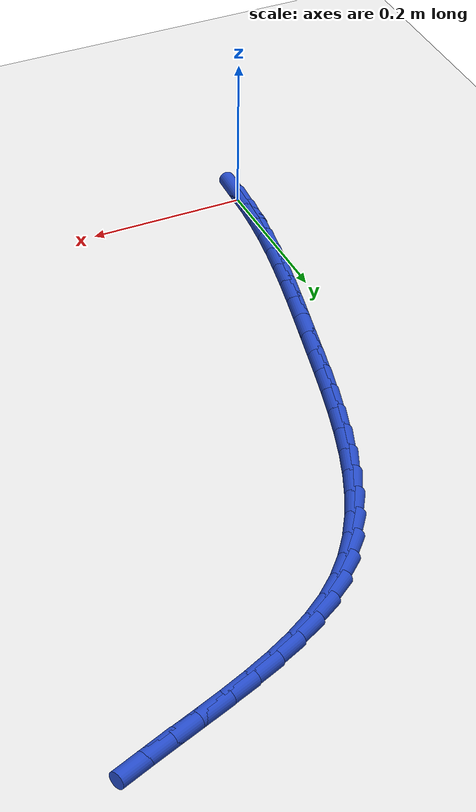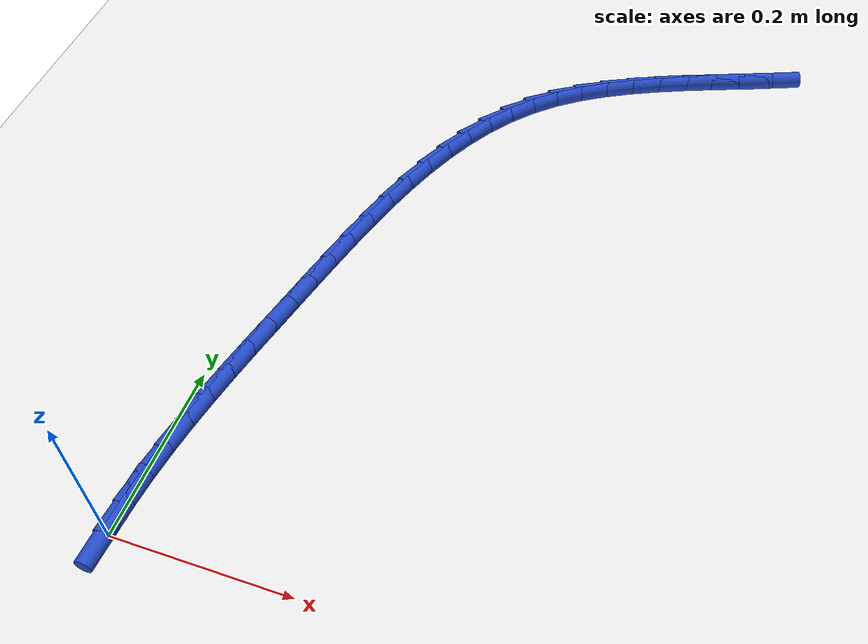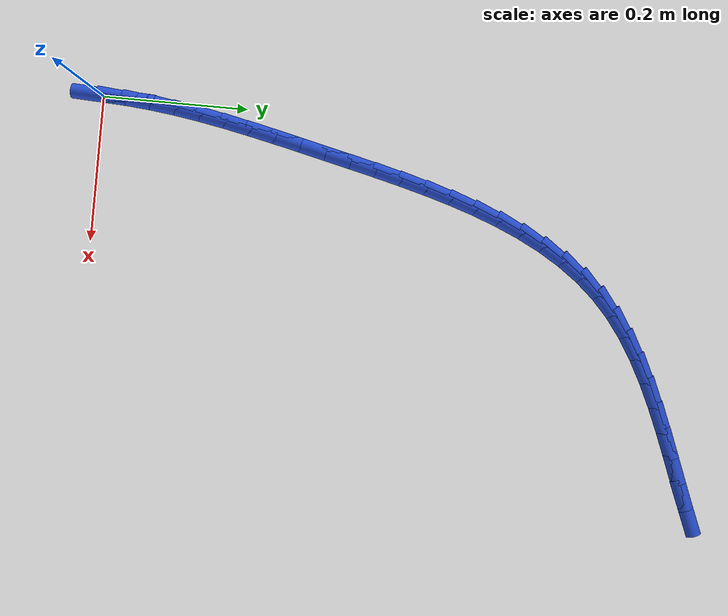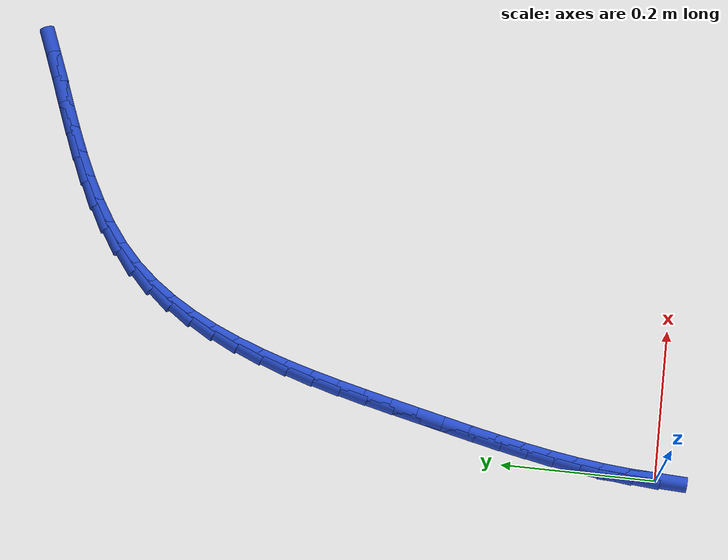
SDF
<sdf version="1.6">
 <world name="default">
  <model name="ground_plane">
   <static>1</static>
   <link name="link">
    <collision name="collision">
     <geometry><plane><normal>0 0 1</normal><size>100 100</size></plane></geometry>
     <surface><friction><ode><mu>100</mu><mu2>50</mu2></ode></friction></surface>
    </collision>
    <visual name="visual">
     <cast_shadows>0</cast_shadows>
     <geometry><plane><normal>0 0 1</normal><size>100 100</size></plane></geometry>
     <material>
      <script><uri>file://media/materials/scripts/gazebo.material</uri><name>Gazebo/WhiteGlow</name></script>
     </material>
    </visual>
   </link>
  </model>
  <model name="line">
   <link name="link_0">
    <pose>-6.938893903907228e-18 -4.163336342344337e-17 0.01 0 1.57 1.5231848816671123</pose>
    <collision name="collision">
     <geometry><cylinder><radius>0.01</radius><length>0.08</length></cylinder></geometry>
    </collision>
    <visual name="visual">
     <material>
      <script><name>Gazebo/Blue</name><uri>file://media/materials/scripts/gazebo.material</uri></script>
     </material>
     <geometry><cylinder><radius>0.01</radius><length>0.08</length></cylinder></geometry>
    </visual>
   </link>
   <link name="link_1">
    <pose>0.0016453678152193493 0.03453212469598638 0.01 0 1.57 1.483026920934233</pose>
    <collision name="collision">
     <geometry><cylinder><radius>0.01</radius><length>0.08</length></cylinder></geometry>
    </collision>
    <visual name="visual">
     <material>
      <script><name>Gazebo/Blue</name><uri>file://media/materials/scripts/gazebo.material</uri></script>
     </material>
     <geometry><cylinder><radius>0.01</radius><length>0.08</length></cylinder></geometry>
    </visual>
   </link>
   <link name="link_2">
    <pose>0.004668144235646132 0.06888362163562825 0.01 0 1.57 1.4476217210021047</pose>
    <collision name="collision">
     <geometry><cylinder><radius>0.01</radius><length>0.08</length></cylinder></geometry>
    </collision>
    <visual name="visual">
     <material>
      <script><name>Gazebo/Blue</name><uri>file://media/materials/scripts/gazebo.material</uri></script>
     </material>
     <geometry><cylinder><radius>0.01</radius><length>0.08</length></cylinder></geometry>
    </visual>
   </link>
   <link name="link_3">
    <pose>0.008908018119011703 0.10313101950087082 0.01 0 1.57 1.4172315815503256</pose>
    <collision name="collision">
     <geometry><cylinder><radius>0.01</radius><length>0.08</length></cylinder></geometry>
    </collision>
    <visual name="visual">
     <material>
      <script><name>Gazebo/Blue</name><uri>file://media/materials/scripts/gazebo.material</uri></script>
     </material>
     <geometry><cylinder><radius>0.01</radius><length>0.08</length></cylinder></geometry>
    </visual>
   </link>
   <link name="link_4">
    <pose>0.014204678323047443 0.1373508469736592 0.01 0 1.57 1.392003799599424</pose>
    <collision name="collision">
     <geometry><cylinder><radius>0.01</radius><length>0.08</length></cylinder></geometry>
    </collision>
    <visual name="visual">
     <material>
      <script><name>Gazebo/Blue</name><uri>file://media/materials/scripts/gazebo.material</uri></script>
     </material>
     <geometry><cylinder><radius>0.01</radius><length>0.08</length></cylinder></geometry>
    </visual>
   </link>
   <link name="link_5">
    <pose>0.02039781370548471 0.1716196327359385 0.01 0 1.57 1.3719909108401365</pose>
    <collision name="collision">
     <geometry><cylinder><radius>0.01</radius><length>0.08</length></cylinder></geometry>
    </collision>
    <visual name="visual">
     <material>
      <script><name>Gazebo/Blue</name><uri>file://media/materials/scripts/gazebo.material</uri></script>
     </material>
     <geometry><cylinder><radius>0.01</radius><length>0.08</length></cylinder></geometry>
    </visual>
   </link>
   <link name="link_6">
    <pose>0.027327113124054878 0.20601390546965395 0.01 0 1.57 1.3571712182811437</pose>
    <collision name="collision">
     <geometry><cylinder><radius>0.01</radius><length>0.08</length></cylinder></geometry>
    </collision>
    <visual name="visual">
     <material>
      <script><name>Gazebo/Blue</name><uri>file://media/materials/scripts/gazebo.material</uri></script>
     </material>
     <geometry><cylinder><radius>0.01</radius><length>0.08</length></cylinder></geometry>
    </visual>
   </link>
   <link name="link_7">
    <pose>0.034832265436489304 0.2406101938567506 0.01 0 1.57 1.3474670817099204</pose>
    <collision name="collision">
     <geometry><cylinder><radius>0.01</radius><length>0.08</length></cylinder></geometry>
    </collision>
    <visual name="visual">
     <material>
      <script><name>Gazebo/Blue</name><uri>file://media/materials/scripts/gazebo.material</uri></script>
     </material>
     <geometry><cylinder><radius>0.01</radius><length>0.08</length></cylinder></geometry>
    </visual>
   </link>
   <link name="link_8">
    <pose>0.0427529595005194 0.2754850265791738 0.01 0 1.57 1.3427595870435172</pose>
    <collision name="collision">
     <geometry><cylinder><radius>0.01</radius><length>0.08</length></cylinder></geometry>
    </collision>
    <visual name="visual">
     <material>
      <script><name>Gazebo/Blue</name><uri>file://media/materials/scripts/gazebo.material</uri></script>
     </material>
     <geometry><cylinder><radius>0.01</radius><length>0.08</length></cylinder></geometry>
    </visual>
   </link>
   <link name="link_9">
    <pose>0.05092888417387649 0.3107149323188686 0.01 0 1.57 1.3424490822171338</pose>
    <collision name="collision">
     <geometry><cylinder><radius>0.01</radius><length>0.08</length></cylinder></geometry>
    </collision>
    <visual name="visual">
     <material>
      <script><name>Gazebo/Blue</name><uri>file://media/materials/scripts/gazebo.material</uri></script>
     </material>
     <geometry><cylinder><radius>0.01</radius><length>0.08</length></cylinder></geometry>
    </visual>
   </link>
   <link name="link_10">
    <pose>0.05921378283738589 0.3463641352428642 0.01 0 1.57 1.3398847619424221</pose>
    <collision name="collision">
     <geometry><cylinder><radius>0.01</radius><length>0.08</length></cylinder></geometry>
    </collision>
    <visual name="visual">
     <material>
      <script><name>Gazebo/Blue</name><uri>file://media/materials/scripts/gazebo.material</uri></script>
     </material>
     <geometry><cylinder><radius>0.01</radius><length>0.08</length></cylinder></geometry>
    </visual>
   </link>
   <link name="link_11">
    <pose>0.06766654538545468 0.38231725695754404 0.01 0 1.57 1.3301765616015284</pose>
    <collision name="collision">
     <geometry><cylinder><radius>0.01</radius><length>0.08</length></cylinder></geometry>
    </collision>
    <visual name="visual">
     <material>
      <script><name>Gazebo/Blue</name><uri>file://media/materials/scripts/gazebo.material</uri></script>
     </material>
     <geometry><cylinder><radius>0.01</radius><length>0.08</length></cylinder></geometry>
    </visual>
   </link>
   <link name="link_12">
    <pose>0.07650139031269201 0.41832293131180665 0.01 0 1.57 1.3131324652733358</pose>
    <collision name="collision">
     <geometry><cylinder><radius>0.01</radius><length>0.08</length></cylinder></geometry>
    </collision>
    <visual name="visual">
     <material>
      <script><name>Gazebo/Blue</name><uri>file://media/materials/scripts/gazebo.material</uri></script>
     </material>
     <geometry><cylinder><radius>0.01</radius><length>0.08</length></cylinder></geometry>
    </visual>
   </link>
   <link name="link_13">
    <pose>0.08593638472700423 0.454126422753867 0.01 0 1.57 1.2884683190787083</pose>
    <collision name="collision">
     <geometry><cylinder><radius>0.01</radius><length>0.08</length></cylinder></geometry>
    </collision>
    <visual name="visual">
     <material>
      <script><name>Gazebo/Blue</name><uri>file://media/materials/scripts/gazebo.material</uri></script>
     </material>
     <geometry><cylinder><radius>0.01</radius><length>0.08</length></cylinder></geometry>
    </visual>
   </link>
   <link name="link_14">
    <pose>0.09618959573629778 0.48947299573193964 0.01 0 1.57 1.255699086308736</pose>
    <collision name="collision">
     <geometry><cylinder><radius>0.01</radius><length>0.08</length></cylinder></geometry>
    </collision>
    <visual name="visual">
     <material>
      <script><name>Gazebo/Blue</name><uri>file://media/materials/scripts/gazebo.material</uri></script>
     </material>
     <geometry><cylinder><radius>0.01</radius><length>0.08</length></cylinder></geometry>
    </visual>
   </link>
   <link name="link_15">
    <pose>0.10747909044847909 0.5241079146942397 0.01 0 1.57 1.2141587710404707</pose>
    <collision name="collision">
     <geometry><cylinder><radius>0.01</radius><length>0.08</length></cylinder></geometry>
    </collision>
    <visual name="visual">
     <material>
      <script><name>Gazebo/Blue</name><uri>file://media/materials/scripts/gazebo.material</uri></script>
     </material>
     <geometry><cylinder><radius>0.01</radius><length>0.08</length></cylinder></geometry>
    </visual>
   </link>
   <link name="link_16">
    <pose>0.12002293597145462 0.557776444088982 0.01 0 1.57 1.163037955421958</pose>
    <collision name="collision">
     <geometry><cylinder><radius>0.01</radius><length>0.08</length></cylinder></geometry>
    </collision>
    <visual name="visual">
     <material>
      <script><name>Gazebo/Blue</name><uri>file://media/materials/scripts/gazebo.material</uri></script>
     </material>
     <geometry><cylinder><radius>0.01</radius><length>0.08</length></cylinder></geometry>
    </visual>
   </link>
   <link name="link_17">
    <pose>0.13403919941313078 0.5902238483643812 0.01 0 1.57 1.1014571595796385</pose>
    <collision name="collision">
     <geometry><cylinder><radius>0.01</radius><length>0.08</length></cylinder></geometry>
    </collision>
    <visual name="visual">
     <material>
      <script><name>Gazebo/Blue</name><uri>file://media/materials/scripts/gazebo.material</uri></script>
     </material>
     <geometry><cylinder><radius>0.01</radius><length>0.08</length></cylinder></geometry>
    </visual>
   </link>
   <link name="link_18">
    <pose>0.14974594788141396 0.6211953919686523 0.01 0 1.57 1.0286000902121475</pose>
    <collision name="collision">
     <geometry><cylinder><radius>0.01</radius><length>0.08</length></cylinder></geometry>
    </collision>
    <visual name="visual">
     <material>
      <script><name>Gazebo/Blue</name><uri>file://media/materials/scripts/gazebo.material</uri></script>
     </material>
     <geometry><cylinder><radius>0.01</radius><length>0.08</length></cylinder></geometry>
    </visual>
   </link>
   <link name="link_19">
    <pose>0.16736124848421058 0.6504363393500101 0.01 0 1.57 0.9439308126309682</pose>
    <collision name="collision">
     <geometry><cylinder><radius>0.01</radius><length>0.08</length></cylinder></geometry>
    </collision>
    <visual name="visual">
     <material>
      <script><name>Gazebo/Blue</name><uri>file://media/materials/scripts/gazebo.material</uri></script>
     </material>
     <geometry><cylinder><radius>0.01</radius><length>0.08</length></cylinder></geometry>
    </visual>
   </link>
   <link name="link_20">
    <pose>0.1871031683294271 0.6776919549566693 0.01 0 1.57 0.847500964042031</pose>
    <collision name="collision">
     <geometry><cylinder><radius>0.01</radius><length>0.08</length></cylinder></geometry>
    </collision>
    <visual name="visual">
     <material>
      <script><name>Gazebo/Blue</name><uri>file://media/materials/scripts/gazebo.material</uri></script>
     </material>
     <geometry><cylinder><radius>0.01</radius><length>0.08</length></cylinder></geometry>
    </visual>
   </link>
   <link name="link_21">
    <pose>0.20918977452496995 0.7027075032368449 0.01 0 1.57 0.741124443735339</pose>
    <collision name="collision">
     <geometry><cylinder><radius>0.01</radius><length>0.08</length></cylinder></geometry>
    </collision>
    <visual name="visual">
     <material>
      <script><name>Gazebo/Blue</name><uri>file://media/materials/scripts/gazebo.material</uri></script>
     </material>
     <geometry><cylinder><radius>0.01</radius><length>0.08</length></cylinder></geometry>
    </visual>
   </link>
   <link name="link_22">
    <pose>0.2338199418164173 0.725247889067673 0.01 0 1.57 0.6399884802421354</pose>
    <collision name="collision">
     <geometry><cylinder><radius>0.01</radius><length>0.08</length></cylinder></geometry>
    </collision>
    <visual name="visual">
     <material>
      <script><name>Gazebo/Blue</name><uri>file://media/materials/scripts/gazebo.material</uri></script>
     </material>
     <geometry><cylinder><radius>0.01</radius><length>0.08</length></cylinder></geometry>
    </visual>
   </link>
   <link name="link_23">
    <pose>0.2608817282276211 0.7453960904027626 0.01 0 1.57 0.5559017023129282</pose>
    <collision name="collision">
     <geometry><cylinder><radius>0.01</radius><length>0.08</length></cylinder></geometry>
    </collision>
    <visual name="visual">
     <material>
      <script><name>Gazebo/Blue</name><uri>file://media/materials/scripts/gazebo.material</uri></script>
     </material>
     <geometry><cylinder><radius>0.01</radius><length>0.08</length></cylinder></geometry>
    </visual>
   </link>
   <link name="link_24">
    <pose>0.2900112252018906 0.7634929342103997 0.01 0 1.57 0.4887742874849566</pose>
    <collision name="collision">
     <geometry><cylinder><radius>0.01</radius><length>0.08</length></cylinder></geometry>
    </collision>
    <visual name="visual">
     <material>
      <script><name>Gazebo/Blue</name><uri>file://media/materials/scripts/gazebo.material</uri></script>
     </material>
     <geometry><cylinder><radius>0.01</radius><length>0.08</length></cylinder></geometry>
    </visual>
   </link>
   <link name="link_25">
    <pose>0.32083726465603 0.7798866764669238 0.01 0 1.57 0.437518248125738</pose>
    <collision name="collision">
     <geometry><cylinder><radius>0.01</radius><length>0.08</length></cylinder></geometry>
    </collision>
    <visual name="visual">
     <material>
      <script><name>Gazebo/Blue</name><uri>file://media/materials/scripts/gazebo.material</uri></script>
     </material>
     <geometry><cylinder><radius>0.01</radius><length>0.08</length></cylinder></geometry>
    </visual>
   </link>
   <link name="link_26">
    <pose>0.352988678506844 0.7949255731486736 0.01 0 1.57 0.4009087303809482</pose>
    <collision name="collision">
     <geometry><cylinder><radius>0.01</radius><length>0.08</length></cylinder></geometry>
    </collision>
    <visual name="visual">
     <material>
      <script><name>Gazebo/Blue</name><uri>file://media/materials/scripts/gazebo.material</uri></script>
     </material>
     <geometry><cylinder><radius>0.01</radius><length>0.08</length></cylinder></geometry>
    </visual>
   </link>
   <link name="link_27">
    <pose>0.38609429867113715 0.8089578802319891 0.01 0 1.57 0.37790662754015253</pose>
    <collision name="collision">
     <geometry><cylinder><radius>0.01</radius><length>0.08</length></cylinder></geometry>
    </collision>
    <visual name="visual">
     <material>
      <script><name>Gazebo/Blue</name><uri>file://media/materials/scripts/gazebo.material</uri></script>
     </material>
     <geometry><cylinder><radius>0.01</radius><length>0.08</length></cylinder></geometry>
    </visual>
   </link>
   <link name="link_28">
    <pose>0.41978295706571406 0.8223318536932097 0.01 0 1.57 0.3678220270332629</pose>
    <collision name="collision">
     <geometry><cylinder><radius>0.01</radius><length>0.08</length></cylinder></geometry>
    </collision>
    <visual name="visual">
     <material>
      <script><name>Gazebo/Blue</name><uri>file://media/materials/scripts/gazebo.material</uri></script>
     </material>
     <geometry><cylinder><radius>0.01</radius><length>0.08</length></cylinder></geometry>
    </visual>
   </link>
   <link name="link_29">
    <pose>0.4536834856073794 0.8353957495086747 0.01 0 1.57 0.37038830947877116</pose>
    <collision name="collision">
     <geometry><cylinder><radius>0.01</radius><length>0.08</length></cylinder></geometry>
    </collision>
    <visual name="visual">
     <material>
      <script><name>Gazebo/Blue</name><uri>file://media/materials/scripts/gazebo.material</uri></script>
     </material>
     <geometry><cylinder><radius>0.01</radius><length>0.08</length></cylinder></geometry>
    </visual>
   </link>
   <link name="link_30">
    <pose>0.48742472968225314 0.8484978104731602 0.01 0 1.57 0.38260862523265976</pose>
    <collision name="collision">
     <geometry><cylinder><radius>0.01</radius><length>0.08</length></cylinder></geometry>
    </collision>
    <visual name="visual">
     <material>
      <script><name>Gazebo/Blue</name><uri>file://media/materials/scripts/gazebo.material</uri></script>
     </material>
     <geometry><cylinder><radius>0.01</radius><length>0.08</length></cylinder></geometry>
    </visual>
   </link>
   <link name="link_191">
    <pose>0.00167833323601976 0.03450474930989452 0.01 0 1.57 1.5221939880183926</pose>
    <collision name="collision">
     <geometry><cylinder><radius>0.01</radius><length>0.08</length></cylinder></geometry>
    </collision>
    <visual name="visual">
     <material>
      <script><name>Gazebo/Blue</name><uri>file://media/materials/scripts/gazebo.material</uri></script>
     </material>
     <geometry><cylinder><radius>0.01</radius><length>0.08</length></cylinder></geometry>
    </visual>
   </link>
  </model>
 </world>
</sdf>
